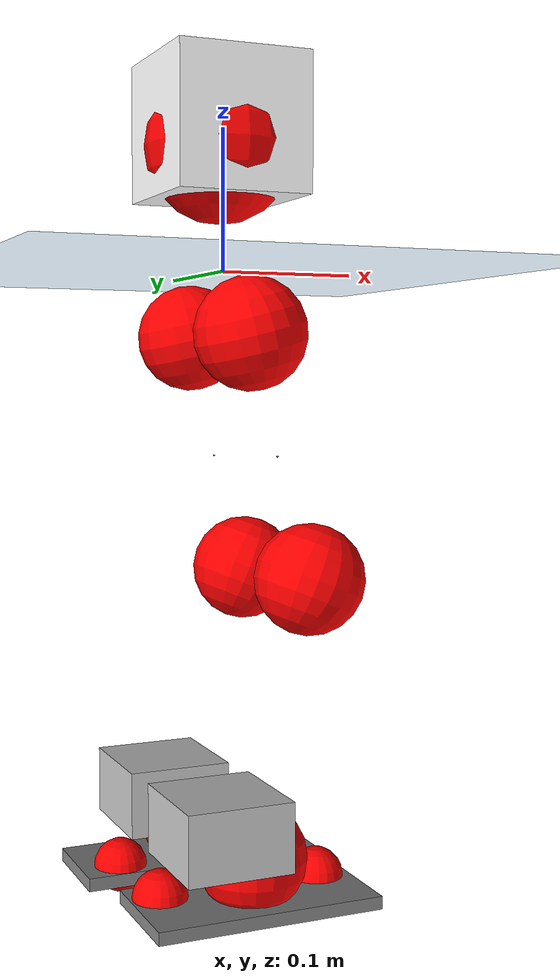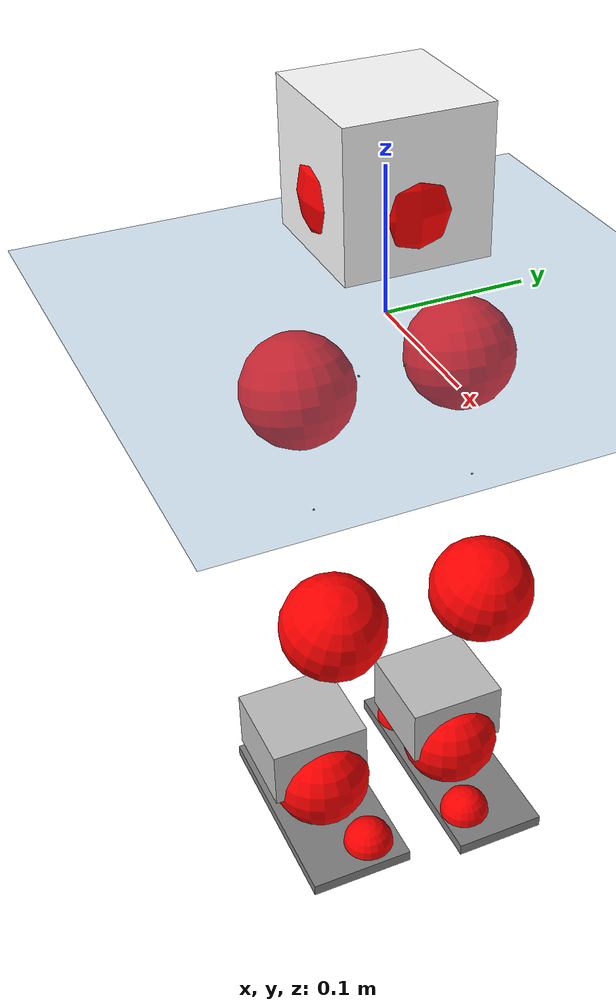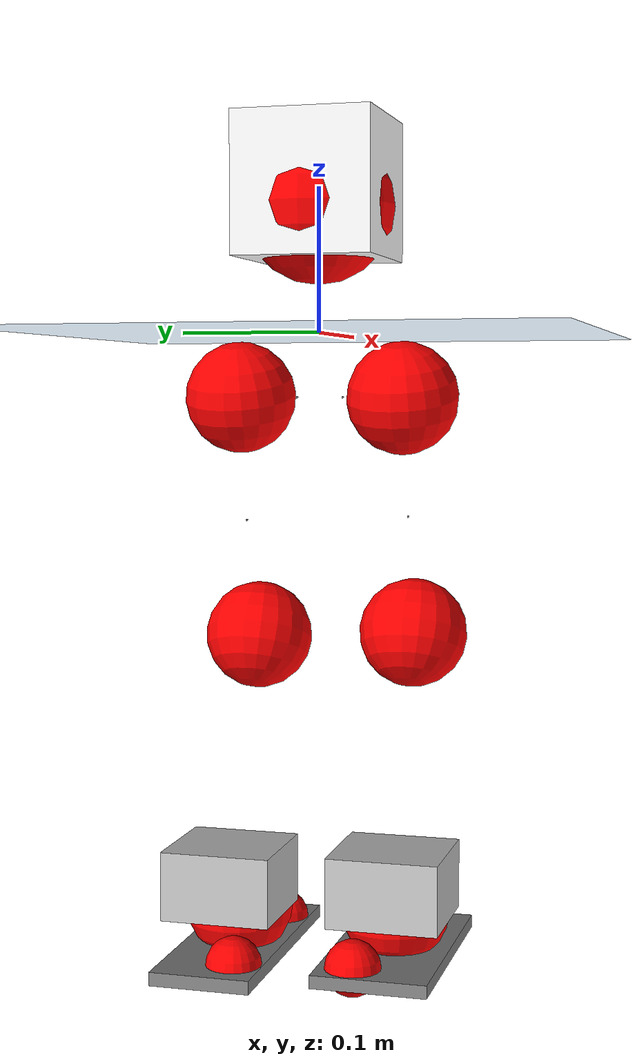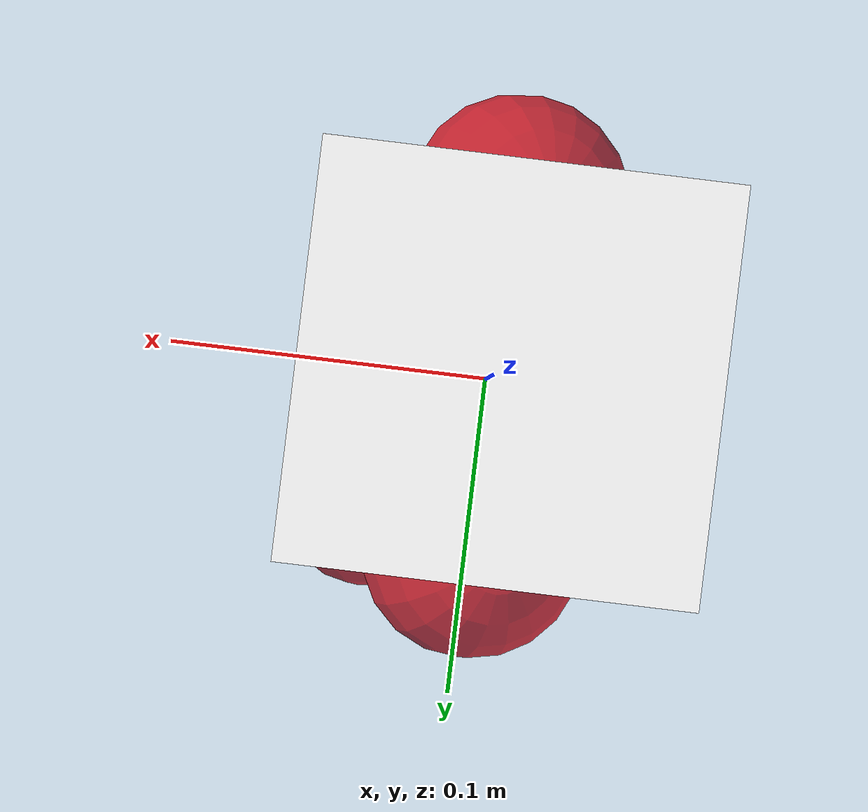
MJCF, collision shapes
<mujoco model="pi_12dof_release_v1">
  <compiler angle="radian" assetdir="assets" balanceinertia="true" inertiafromgeom="false"/>

  <option timestep="0.005" density="1.2" viscosity="2e-05"/>

  <size nkey="1"/>

  <visual>
    <quality shadowsize="8192"/>
    <map shadowclip="0.5"/>
  </visual>

  <default>
    <default class="/">
      <joint armature="0.01" damping="0.01" frictionloss="0.01"/>
      <geom contype="0" conaffinity="0" group="1" solref="-1000 -80"/>
      <site size="0.01 0.005 0.005" group="5"/>
      <general forcelimited="true" biastype="affine" gainprm="20" biasprm="0 -20 -0.5"/>
      <default class="foot">
        <geom size="0.0845 0.036 0.005" type="box" condim="6" group="4" priority="1" friction="0.9 0.2 0.2" solimp="0.015 1 0.005"/>
      </default>
      <default class="reward_collision_sphere">
        <geom group="5" rgba="1 0 0 1"/>
      </default>
    </default>
  </default>

  <asset>
    <texture type="skybox" colorspace="auto" name="//unnamed_texture_0" builtin="gradient" rgb1="0.95 0.95 0.95" rgb2="0.95 0.95 0.95" width="100" height="600"/>
    <texture type="2d" colorspace="auto" name="texplane" builtin="checker" rgb1="0.345 0.575 0.748" rgb2="0.345 0.575 0.748" markrgb="1 1 1" width="512" height="512"/>
    <material name="MatPlane" class="/" texture="texplane" texuniform="true" texrepeat="2 2" specular="0.9"/>
    <mesh name="baselink_1" class="/" file="baselink_1.STL"/>
    <mesh name="r_hip_pitch_link" class="/" file="r_hip_pitch_link.STL"/>
    <mesh name="r_hip_roll_link" class="/" file="r_hip_roll_link.STL"/>
    <mesh name="r_thigh_link" class="/" file="r_thigh_link.STL"/>
    <mesh name="r_calf_link" class="/" file="r_calf_link.STL"/>
    <mesh name="r_ankle_pitch_link" class="/" file="r_ankle_pitch_link.STL"/>
    <mesh name="r_ankle_roll_link" class="/" file="r_ankle_roll_link.STL"/>
    <mesh name="l_hip_pitch_link" class="/" file="l_hip_pitch_link.STL"/>
    <mesh name="l_hip_roll_link" class="/" file="l_hip_roll_link.STL"/>
    <mesh name="l_thigh_link" class="/" file="l_thigh_link.STL"/>
    <mesh name="l_calf_link" class="/" file="l_calf_link.STL"/>
    <mesh name="l_ankle_pitch_link" class="/" file="l_ankle_pitch_link.STL"/>
    <mesh name="l_ankle_roll_link" class="/" file="l_ankle_roll_link.STL"/>
  </asset>

  <worldbody>
    <geom name="floor" class="/" size="100 100 0.125" type="plane" group="0" material="MatPlane"/>
    <light name="toplight_shadow" class="/" pos="0 0 5" dir="0.0990148 0.0990148 -0.990148" type="directional" ambient="0.04 0.04 0.04" diffuse="0.55 0.55 0.55" specular="0.12 0.12 0.12"/>
    <light name="toplight_fill" class="/" pos="0 0 5" dir="0.0990148 0.0990148 -0.990148" type="directional" castshadow="false" ambient="0.04 0.04 0.04" diffuse="0.3 0.3 0.3" specular="0.08 0.08 0.08"/>
    <body name="trunk" pos="-0.00233069 0.000112466 -0.002814" quat="0.999999 -0.00020514 -0.000641306 -0.00113425">
      <inertial pos="-0.000754694 0.00216859 0.0501122" quat="0.692841 0.0125516 0.016827 0.720785" mass="2.00337" diaginertia="0.00516707 0.00242125 0.0138794"/>
      <joint name="//unnamed_joint_0" type="free"/>
      <geom name="//unnamed_geom_1" class="/" type="mesh" density="0" rgba="1 1 1 1" mesh="baselink_1"/>
      <geom name="//unnamed_geom_2" class="/" size="0.04861 0.04861 0.04861" pos="0 0 0.101623" type="box" rgba="1 1 1 1"/>
      <geom name="//unnamed_geom_3" class="reward_collision_sphere" size="0.053471" pos="0 0 0.0889204"/>
      <site name="imu" class="/" pos="0.0139689 0.00367502 -0.0121502" size="0.009722"/>
      <camera name="track" class="/" pos="0 -1.53745 0" quat="0.707107 0.707107 0 0" mode="trackcom"/>
      <camera name="ego_camera" class="/" pos="0.0658189 0 0.228652" quat="-0.5 -0.5 0.5 0.5"/>
      <body name="r_hip_pitch_link" pos="-0.00168218 -0.0179575 -0.0423239" quat="0.992218 -0.000111785 -0.124516 0.00012227">
        <inertial pos="-0.00201181 -0.0428945 -0.000964065" quat="-0.0242067 0.712496 -0.0247014 0.700823" mass="0.341578" diaginertia="5.68027e-05 2.66206e-05 0.000286199"/>
        <joint name="r_hip_pitch_joint" class="/" pos="0 0 0" axis="0.00715884 -0.999972 -0.00206783" range="-1.768 1.23311" armature="0.00836697" damping="0.0177833" frictionloss="0.0106266"/>
        <geom name="//unnamed_geom_4" class="/" type="mesh" density="0" rgba="0.75294 0.75294 0.75294 1" mesh="r_hip_pitch_link"/>
        <geom name="//unnamed_geom_5" class="/" size="0.0004861 0.0004861 0.0004861" type="box" rgba="0.75294 0.75294 0.75294 1"/>
        <body name="r_hip_roll_link" pos="-0.00147605 -0.0429286 -0.00024504" quat="1 0.000130728 -0.000448102 9.35474e-05">
          <inertial pos="-0.00147445 -0.00055017 -0.0766287" quat="0.704108 -0.0724722 -0.0766194 0.702217" mass="0.349926" diaginertia="0.000172944 7.1148e-05 0.000423848"/>
          <joint name="r_hip_roll_joint" class="/" pos="0 0 0" axis="-0.99994 0.0109535 -0.000556975" range="-0.12778 0.512987" armature="0.0109478" damping="0" frictionloss="0.00864264"/>
          <geom name="//unnamed_geom_6" class="/" type="mesh" density="0" rgba="0.75294 0.75294 0.75294 1" mesh="r_hip_roll_link"/>
          <geom name="//unnamed_geom_7" class="/" size="0.0004861 0.0004861 0.0004861" type="box" rgba="0.75294 0.75294 0.75294 1"/>
          <geom name="//unnamed_geom_8" class="reward_collision_sphere" size="0.038888"/>
          <body name="r_thigh_link" pos="-0.00132165 0.000174722 -0.0852314" quat="1 -0.000235864 -1.81926e-05 4.9304e-05">
            <inertial pos="-0.00125156 -0.00205285 -0.0578405" quat="0.73636 0.676587 -0.00126397 0.00153691" mass="0.103561" diaginertia="6.64624e-05 2.47848e-05 0.000191046"/>
            <joint name="r_thigh_joint" class="/" pos="0 0 0" axis="0.00210848 -0.0145235 -0.999892" range="-0.263753 0.641293" armature="0.0100946" damping="0" frictionloss="0.0101077"/>
            <geom name="//unnamed_geom_9" class="/" type="mesh" density="0" rgba="0.75294 0.75294 0.75294 1" mesh="r_thigh_link"/>
            <geom name="//unnamed_geom_10" class="/" size="0.0004861 0.0004861 0.0004861" type="box" rgba="0.75294 0.75294 0.75294 1"/>
            <body name="r_calf_link" pos="0.0031266 0.00150959 -0.0888657" quat="0.947621 -6.08315e-05 0.319398 4.3876e-05">
              <inertial pos="-0.00259841 -0.00325995 -0.088611" quat="0.999973 -0.0051631 0.00220988 0.00481668" mass="0.745513" diaginertia="0.00177437 0.000973955 0.000584451"/>
              <joint name="r_calf_joint" class="/" pos="0 0 0" axis="-0.0061569 -0.999971 -0.00437727" range="-1.63617 0.653392" armature="0.00869001" damping="0.00815072" frictionloss="0.0101088"/>
              <geom name="//unnamed_geom_11" class="/" type="mesh" density="0" rgba="0.75294 0.75294 0.75294 1" mesh="r_calf_link"/>
              <geom name="//unnamed_geom_12" class="/" size="0.0004861 0.0004861 0.0004861" type="box" rgba="0.75294 0.75294 0.75294 1"/>
              <geom name="//unnamed_geom_13" class="reward_collision_sphere" size="0.038888"/>
              <body name="r_ankle_pitch_link" pos="0.00257315 -0.000832551 -0.179173" quat="0.979923 0.000551027 -0.199373 -0.00086284">
                <inertial pos="0.00438609 0.00264515 -0.000275542" quat="0.00444683 0.706686 -0.0063066 0.707485" mass="0.166644" diaginertia="0.000155216 5.99073e-05 0.000398616"/>
                <joint name="r_ankle_pitch_joint" class="/" pos="0 0 0" axis="-0.010929 -0.99994 -9.76675e-05" stiffness="0.00697808" range="-1.28679 0.494457" armature="0.0095596" damping="0.0138576" frictionloss="0.0103204"/>
                <geom name="//unnamed_geom_14" class="/" type="mesh" density="0" rgba="0.75294 0.75294 0.75294 1" mesh="r_ankle_pitch_link"/>
                <geom name="//unnamed_geom_15" class="/" size="0.0379158 0.038888 0.024305" type="box" rgba="0.75294 0.75294 0.75294 1"/>
                <body name="r_ankle_roll_link" pos="0.0687943 0.00411903 0.000813315" quat="1 -0.000109251 -4.47969e-05 -7.25831e-05">
                  <inertial pos="-0.0203999 -0.00128719 -0.0193809" quat="0.560246 0.435545 0.442132 0.548583" mass="0.470552" diaginertia="0.000616207 0.000278229 0.000938824"/>
                  <joint name="r_ankle_roll_joint" class="/" pos="0 0 0" axis="-0.999992 -0.0040779 -0.000461091" stiffness="0.00100157" range="-0.0996153 0.12694" armature="0.00952056" damping="0.0150925" frictionloss="0.00836241"/>
                  <geom name="//unnamed_geom_16" class="/" type="mesh" density="0" rgba="0.75294 0.75294 0.75294 1" mesh="r_ankle_roll_link"/>
                  <geom name="//unnamed_geom_17" class="/" type="mesh" rgba="0.75294 0.75294 0.75294 1" mesh="r_ankle_roll_link"/>
                  <geom name="right_foot" class="foot" size="0.0814516 0.0401532 0.00455232" pos="-0.0447569 0 -0.0558928"/>
                  <geom name="//unnamed_geom_19" class="reward_collision_sphere" size="0.038888" pos="-0.0438793 0 -0.0254058"/>
                  <geom name="//unnamed_geom_20" class="reward_collision_sphere" size="0.019444" pos="0.0131638 0.0153745 -0.0508116"/>
                  <geom name="//unnamed_geom_21" class="reward_collision_sphere" size="0.019444" pos="-0.10531 0.0153745 -0.0508116"/>
                  <site name="right_foot" class="foot" pos="-0.0447569 0 -0.0558928" size="0.009722"/>
                </body>
              </body>
            </body>
          </body>
        </body>
      </body>
      <body name="l_hip_pitch_link" pos="-0.00120775 0.0150615 -0.0423177" quat="0.992164 3.03384e-05 -0.124943 0.000190936">
        <inertial pos="0.00139898 0.0419316 -0.00105656" quat="-0.0386859 0.705619 0.0297094 0.706911" mass="0.362521" diaginertia="6.80691e-05 2.74064e-05 0.000330792"/>
        <joint name="l_hip_pitch_joint" class="/" pos="0 0 0" axis="0.0104517 0.999929 -0.00580572" stiffness="0.00174788" range="-1.20337 1.73502" armature="0.0108082" damping="0.00848528" frictionloss="0.0096018"/>
        <geom name="//unnamed_geom_22" class="/" type="mesh" density="0" rgba="0.75294 0.75294 0.75294 1" mesh="l_hip_pitch_link"/>
        <geom name="//unnamed_geom_23" class="/" size="0.0004861 0.0004861 0.0004861" type="box" rgba="0.75294 0.75294 0.75294 1"/>
        <body name="l_hip_roll_link" pos="0.000320819 0.0413844 -0.000126465" quat="1 -0.000122222 -0.000208871 -0.000158229">
          <inertial pos="-0.00257261 0.000951904 -0.0765738" quat="0.695854 -0.0760202 -0.0782052 0.709853" mass="0.365765" diaginertia="0.000178408 7.61356e-05 0.000435141"/>
          <joint name="l_hip_roll_joint" class="/" pos="0 0 0" axis="-1 -4.63084e-05 -0.000377205" stiffness="0.0093306" range="-0.507258 0.15469" armature="0.00838791" damping="0.00985661" frictionloss="0.00964847"/>
          <geom name="//unnamed_geom_24" class="/" type="mesh" density="0" rgba="0.75294 0.75294 0.75294 1" mesh="l_hip_roll_link"/>
          <geom name="//unnamed_geom_25" class="/" size="0.0004861 0.0004861 0.0004861" type="box" rgba="0.75294 0.75294 0.75294 1"/>
          <geom name="//unnamed_geom_26" class="reward_collision_sphere" size="0.038888"/>
          <body name="l_thigh_link" pos="-0.00252848 0.00235909 -0.0903522" quat="1 0.000305134 -0.00026651 -1.20712e-05">
            <inertial pos="0.00291097 -0.00397887 -0.0577997" quat="0.673619 0.739028 0.00247929 0.00831698" mass="0.10123" diaginertia="6.4929e-05 2.6359e-05 0.000186779"/>
            <joint name="l_thigh_joint" class="/" pos="0 0 0" axis="-4.12238e-06 7.78924e-05 -1" stiffness="0.00400641" range="-0.602283 0.243079" armature="0.009589" damping="0.00670532" frictionloss="0.00980389"/>
            <geom name="//unnamed_geom_27" class="/" type="mesh" density="0" rgba="0.75294 0.75294 0.75294 1" mesh="l_thigh_link"/>
            <geom name="//unnamed_geom_28" class="/" size="0.0004861 0.0004861 0.0004861" type="box" rgba="0.75294 0.75294 0.75294 1"/>
            <body name="l_calf_link" pos="0.00179349 -0.00169479 -0.0893722" quat="0.947781 0.000898618 0.318919 0.000138008">
              <inertial pos="0.000340786 0.00363049 -0.0911242" quat="0.99998 0.00407859 -0.000334069 0.00488654" mass="0.775773" diaginertia="0.00182724 0.000932576 0.000577747"/>
              <joint name="l_calf_joint" class="/" pos="0 0 0" axis="-0.000848893 0.99998 0.00625959" range="-0.65902 1.66805" armature="0.00964946" damping="0.00706746" frictionloss="0.0108385"/>
              <geom name="//unnamed_geom_29" class="/" type="mesh" density="0" rgba="0.75294 0.75294 0.75294 1" mesh="l_calf_link"/>
              <geom name="//unnamed_geom_30" class="/" size="0.0004861 0.0004861 0.0004861" type="box" rgba="0.75294 0.75294 0.75294 1"/>
              <geom name="//unnamed_geom_31" class="reward_collision_sphere" size="0.038888"/>
              <body name="l_ankle_pitch_link" pos="0.00247077 0.00104752 -0.17786" quat="0.980056 -6.89846e-05 -0.198721 -2.77049e-05">
                <inertial pos="0.00152208 0.00167504 -0.000479951" quat="-0.00142039 0.706644 0.00282181 0.707562" mass="0.155013" diaginertia="0.000162291 5.87378e-05 0.000396581"/>
                <joint name="l_ankle_pitch_joint" class="/" pos="0 0 0" axis="-0.00116426 0.999999 -0.000407251" range="-0.520324 1.29419" armature="0.00890422" damping="0.00657983" frictionloss="0.0103198"/>
                <geom name="//unnamed_geom_32" class="/" type="mesh" density="0" rgba="0.75294 0.75294 0.75294 1" mesh="l_ankle_pitch_link"/>
                <geom name="//unnamed_geom_33" class="/" size="0.0379158 0.038888 0.024305" type="box" rgba="0.75294 0.75294 0.75294 1"/>
                <body name="l_ankle_roll_link" pos="0.0663709 0.000706458 0.000636711" quat="1 -0.000350613 2.50745e-05 0.000275098">
                  <inertial pos="-0.0197616 -0.00101672 -0.0187141" quat="0.560881 0.430791 0.433645 0.558376" mass="0.449384" diaginertia="0.000562618 0.000270529 0.000896801"/>
                  <joint name="l_ankle_roll_joint" class="/" pos="0 0 0" axis="-0.999968 0.00797453 -0.000996415" stiffness="5.52306e-05" range="-0.113761 0.154412" armature="0.0107794" damping="0.0159934" frictionloss="0.00970827"/>
                  <geom name="//unnamed_geom_34" class="/" type="mesh" density="0" rgba="0.75294 0.75294 0.75294 1" mesh="l_ankle_roll_link"/>
                  <geom name="//unnamed_geom_35" class="/" type="mesh" rgba="0.75294 0.75294 0.75294 1" mesh="l_ankle_roll_link"/>
                  <geom name="left_foot" class="foot" size="0.0908186 0.0354659 0.00475371" pos="-0.0447569 0 -0.0558928"/>
                  <geom name="//unnamed_geom_37" class="reward_collision_sphere" size="0.038888" pos="-0.0438793 0 -0.0254058"/>
                  <geom name="//unnamed_geom_38" class="reward_collision_sphere" size="0.019444" pos="0.0131638 -0.0153745 -0.0508116"/>
                  <geom name="//unnamed_geom_39" class="reward_collision_sphere" size="0.019444" pos="-0.10531 -0.0153745 -0.0508116"/>
                  <site name="left_foot" class="foot" pos="-0.0447569 0 -0.0558928" size="0.009722"/>
                </body>
              </body>
            </body>
          </body>
        </body>
      </body>
    </body>
  </worldbody>

  <contact>
    <pair class="/" geom1="floor" geom2="right_foot" name="//unnamed_contact_1"/>
    <pair class="/" geom1="floor" geom2="left_foot" name="//unnamed_contact_0"/>
  </contact>

  <actuator>
    <general name="r_hip_pitch_joint" class="/" joint="r_hip_pitch_joint" forcerange="-20.4812 20.4812" gainprm="19.6657" biasprm="0 -19.6657 -0.457358"/>
    <general name="r_hip_roll_joint" class="/" joint="r_hip_roll_joint" forcerange="-19.6077 19.6077" gainprm="19.6657" biasprm="0 -19.6657 -0.457358"/>
    <general name="r_thigh_joint" class="/" joint="r_thigh_joint" forcerange="-22.65 22.65" gainprm="19.6657" biasprm="0 -19.6657 -0.457358"/>
    <general name="r_calf_joint" class="/" joint="r_calf_joint" forcerange="-18.6764 18.6764" gainprm="19.6657" biasprm="0 -19.6657 -0.457358"/>
    <general name="r_ankle_pitch_joint" class="/" joint="r_ankle_pitch_joint" forcerange="-22.2566 22.2566" gainprm="19.6657" biasprm="0 -19.6657 -0.457358"/>
    <general name="r_ankle_roll_joint" class="/" joint="r_ankle_roll_joint" forcerange="-22.5309 22.5309" gainprm="19.6657" biasprm="0 -19.6657 -0.457358"/>
    <general name="l_hip_pitch_joint" class="/" joint="l_hip_pitch_joint" forcerange="-21.0988 21.0988" gainprm="19.6657" biasprm="0 -19.6657 -0.457358"/>
    <general name="l_hip_roll_joint" class="/" joint="l_hip_roll_joint" forcerange="-21.5311 21.5311" gainprm="19.6657" biasprm="0 -19.6657 -0.457358"/>
    <general name="l_thigh_joint" class="/" joint="l_thigh_joint" forcerange="-19.8249 19.8249" gainprm="19.6657" biasprm="0 -19.6657 -0.457358"/>
    <general name="l_calf_joint" class="/" joint="l_calf_joint" forcerange="-19.8959 19.8959" gainprm="19.6657" biasprm="0 -19.6657 -0.457358"/>
    <general name="l_ankle_pitch_joint" class="/" joint="l_ankle_pitch_joint" forcerange="-22.4639 22.4639" gainprm="19.6657" biasprm="0 -19.6657 -0.457358"/>
    <general name="l_ankle_roll_joint" class="/" joint="l_ankle_roll_joint" forcerange="-19.6311 19.6311" gainprm="19.6657" biasprm="0 -19.6657 -0.457358"/>
  </actuator>

  <sensor>
    <gyro site="imu" name="imu_angular_velocity"/>
    <velocimeter site="imu" name="imu_linear_velocity"/>
    <framelinvel objtype="site" objname="left_foot" name="left_foot_global_linear_velocity"/>
    <framelinvel objtype="site" objname="right_foot" name="right_foot_global_linear_velocity"/>
  </sensor>

  <keyframe>
    <key name="home" qpos="0 0 0.291 1 0 0 0 0.4 0 0 -0.8 0.4 0 -0.4 0 0 0.8 -0.4 0"/>
  </keyframe>
</mujoco>
